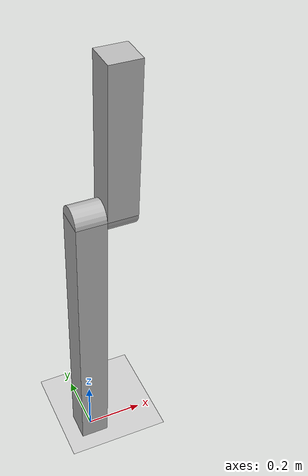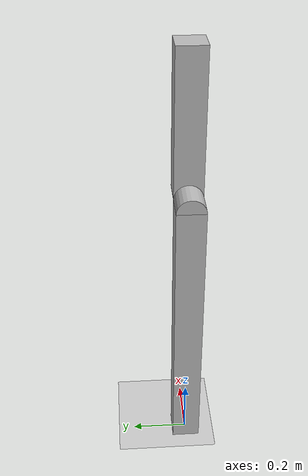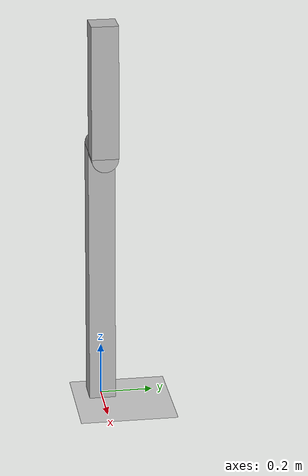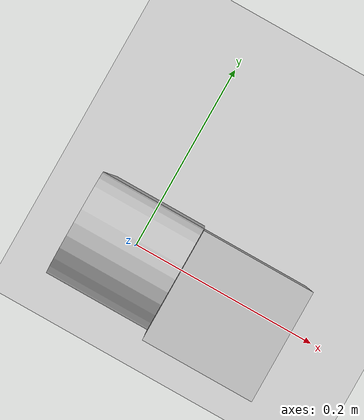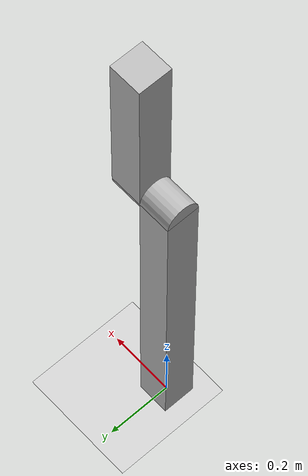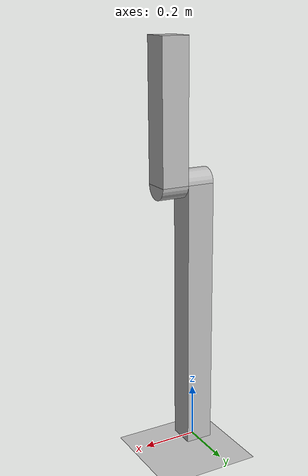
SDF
<sdf version='1.6'>
  <world name="default">
    <physics type="ode">
        <solver>
          <type>world</type>
        </solver>
          <max_step_size>0.001</max_step_size>
    </physics>
    <!-- Ground Plane -->
    <include>
      <uri>model://ground_plane</uri>
    </include>

    <include>
      <uri>model://sun</uri>
    </include>
  <model name='test_pendulum'>
    <allow_auto_disable>0</allow_auto_disable>
    <link name='base_link'>
      <pose frame=''>0 0 0 0 -0 0</pose>
      <inertial>
        <pose frame=''>0 0 0.5 0 -0 0</pose>
        <mass>1.0</mass>
        <inertia>
          <ixx>0.08416666666666667</ixx>
          <ixy>0</ixy>
          <ixz>0</ixz>
          <iyy>0.08416666666666667</iyy>
          <iyz>0</iyz>
          <izz>0.001666666666666667</izz>
        </inertia>
      </inertial>
      <collision name='base_link_collision'>
        <pose frame=''>0 0 0.5 0 0 0</pose>
        <geometry>
          <box>
            <size>0.1 0.1 1.0</size>
          </box>
        </geometry>
      </collision>
      <visual name='base_link_visual'>
        <pose frame=''>0 0 0.5 0 0 0</pose>
        <geometry>
          <box>
            <size>0.1 0.1 1.0</size>
          </box>
        </geometry>
      </visual>
      <visual name='base_link_to_first_link_joint_visual'>
        <pose frame=''>0.05 0 1.0 0 1.57 0</pose>
        <geometry>
          <cylinder>
            <radius>0.05</radius>
            <length>0.2</length>
          </cylinder>
        </geometry>
      </visual>
    </link>
    <link name='first_link'>
      <pose frame=''>0.1 0 1.0 0 0 0</pose>
      <inertial>
        <pose frame=''>0 0 0.25 0 -0 0</pose>
        <mass>1.0</mass>
        <inertia>
          <ixx>0.021666666666666667</ixx>
          <ixy>0</ixy>
          <ixz>0</ixz>
          <iyy>0.021666666666666667</iyy>
          <iyz>0</iyz>
          <izz>0.001666666666666667</izz>
        </inertia>
      </inertial>
      <collision name='first_link_collision'>
        <pose frame=''>0 0 0.25 0 0 0</pose>
        <geometry>
          <box>
            <size>0.1 0.1 0.5</size>
          </box>
        </geometry>
      </collision>
      <visual name='first_link_visual'>
        <pose frame=''>0 0 0.25 0 0 0</pose>
        <geometry>
          <box>
            <size>0.1 0.1 0.5</size>
          </box>
        </geometry>
      </visual>
    </link>
    <joint name='J01' type='revolute'>
      <child>first_link</child>
      <parent>base_link</parent>
      <axis>
        <xyz>1 0 0</xyz>
        <limit>
          <effort>52.8</effort>
        </limit>
        <dynamics>
          <spring_reference>0</spring_reference>
          <spring_stiffness>0</spring_stiffness>
        </dynamics>
        <use_parent_model_frame>1</use_parent_model_frame>
      </axis>
      <physics>
        <ode>
          <provide_feedback>true</provide_feedback>
        </ode>
      </physics>
    </joint>
    <joint type="fixed" name="fixed base_link to ground">
      <parent>world</parent>
      <child>base_link</child>
    </joint>
    <plugin name="test_pendulum" filename="libtest_pendulum.so"/>
  </model>
  </world>
</sdf>
